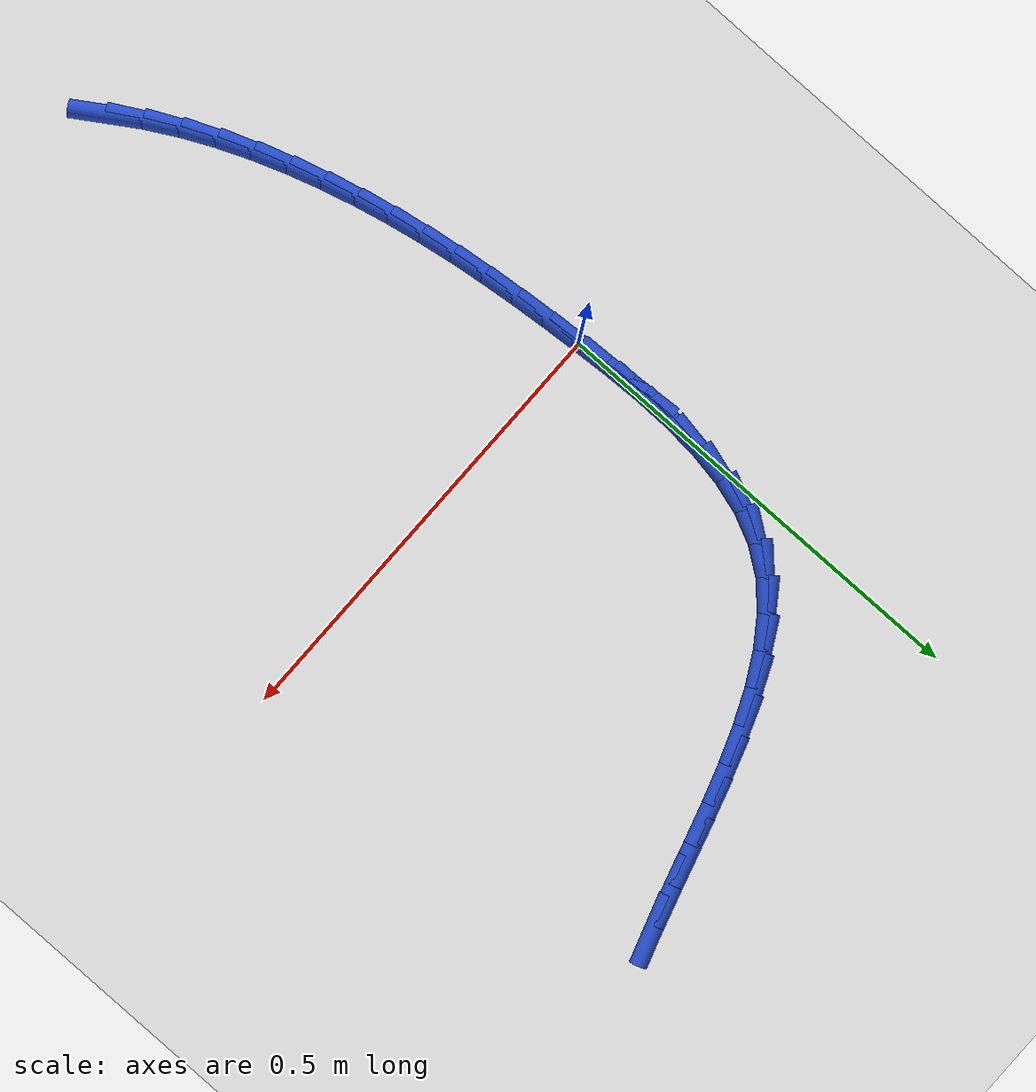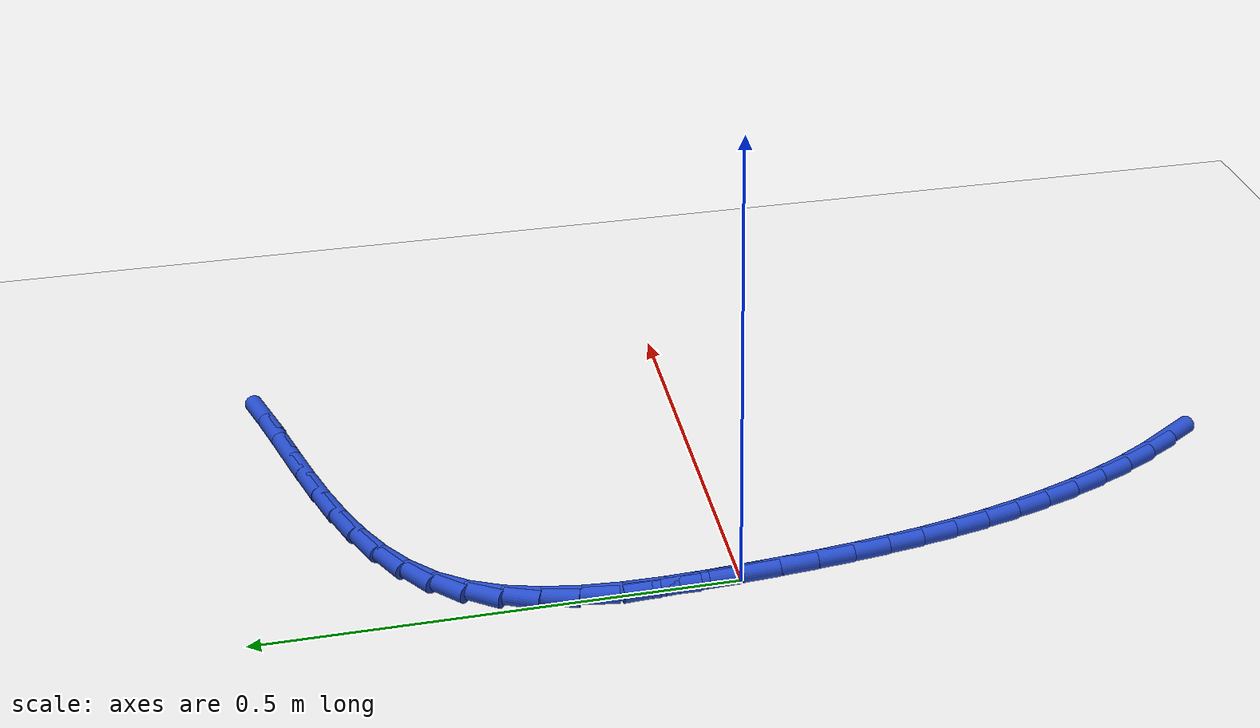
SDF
<sdf version="1.6">
 <world name="default">
  <model name="ground_plane">
   <static>1</static>
   <link name="link">
    <collision name="collision">
     <geometry><plane><normal>0 0 1</normal><size>100 100</size></plane></geometry>
     <surface><friction><ode><mu>100</mu><mu2>50</mu2></ode></friction></surface>
    </collision>
    <visual name="visual">
     <cast_shadows>0</cast_shadows>
     <geometry><plane><normal>0 0 1</normal><size>100 100</size></plane></geometry>
     <material>
      <script><uri>file://media/materials/scripts/gazebo.material</uri><name>Gazebo/WhiteGlow</name></script>
     </material>
    </visual>
   </link>
  </model>
  <model name="line">
   <link name="link_0">
    <pose>-2.0383000842727483e-17 -1.1102230246251565e-16 0.01 0 1.57 -1.508984199646049</pose>
    <collision name="collision">
     <geometry><cylinder><radius>0.01</radius><length>0.08</length></cylinder></geometry>
    </collision>
    <visual name="visual">
     <material>
      <script><name>Gazebo/Blue</name><uri>file://media/materials/scripts/gazebo.material</uri></script>
     </material>
     <geometry><cylinder><radius>0.01</radius><length>0.08</length></cylinder></geometry>
    </visual>
   </link>
   <link name="link_1">
    <pose>-0.0025937557235531923 0.041908467589019074 0.01 0 1.57 -1.5369183679164307</pose>
    <collision name="collision">
     <geometry><cylinder><radius>0.01</radius><length>0.08</length></cylinder></geometry>
    </collision>
    <visual name="visual">
     <material>
      <script><name>Gazebo/Blue</name><uri>file://media/materials/scripts/gazebo.material</uri></script>
     </material>
     <geometry><cylinder><radius>0.01</radius><length>0.08</length></cylinder></geometry>
    </visual>
   </link>
   <link name="link_2">
    <pose>-0.004026922768987371 0.0841961012385936 0.01 0 1.57 1.5589588671000538</pose>
    <collision name="collision">
     <geometry><cylinder><radius>0.01</radius><length>0.08</length></cylinder></geometry>
    </collision>
    <visual name="visual">
     <material>
      <script><name>Gazebo/Blue</name><uri>file://media/materials/scripts/gazebo.material</uri></script>
     </material>
     <geometry><cylinder><radius>0.01</radius><length>0.08</length></cylinder></geometry>
    </visual>
   </link>
   <link name="link_3">
    <pose>-0.0035299012083987186 0.12618132087694997 0.01 0 1.57 1.4929850990292006</pose>
    <collision name="collision">
     <geometry><cylinder><radius>0.01</radius><length>0.08</length></cylinder></geometry>
    </collision>
    <visual name="visual">
     <material>
      <script><name>Gazebo/Blue</name><uri>file://media/materials/scripts/gazebo.material</uri></script>
     </material>
     <geometry><cylinder><radius>0.01</radius><length>0.08</length></cylinder></geometry>
    </visual>
   </link>
   <link name="link_4">
    <pose>-0.00033309111388339814 0.16718254643231467 0.01 0 1.57 1.4029216809968357</pose>
    <collision name="collision">
     <geometry><cylinder><radius>0.01</radius><length>0.08</length></cylinder></geometry>
    </collision>
    <visual name="visual">
     <material>
      <script><name>Gazebo/Blue</name><uri>file://media/materials/scripts/gazebo.material</uri></script>
     </material>
     <geometry><cylinder><radius>0.01</radius><length>0.08</length></cylinder></geometry>
    </visual>
   </link>
   <link name="link_5">
    <pose>0.00633310744246242 0.2065181978329144 0.01 0 1.57 1.2840926498506111</pose>
    <collision name="collision">
     <geometry><cylinder><radius>0.01</radius><length>0.08</length></cylinder></geometry>
    </collision>
    <visual name="visual">
     <material>
      <script><name>Gazebo/Blue</name><uri>file://media/materials/scripts/gazebo.material</uri></script>
     </material>
     <geometry><cylinder><radius>0.01</radius><length>0.08</length></cylinder></geometry>
    </visual>
   </link>
   <link name="link_6">
    <pose>0.01723829438854259 0.2435066950069756 0.01 0 1.57 1.1325771899493786</pose>
    <collision name="collision">
     <geometry><cylinder><radius>0.01</radius><length>0.08</length></cylinder></geometry>
    </collision>
    <visual name="visual">
     <material>
      <script><name>Gazebo/Blue</name><uri>file://media/materials/scripts/gazebo.material</uri></script>
     </material>
     <geometry><cylinder><radius>0.01</radius><length>0.08</length></cylinder></geometry>
    </visual>
   </link>
   <link name="link_7">
    <pose>0.03315206965226094 0.2774664578827249 0.01 0 1.57 0.9494726755291081</pose>
    <collision name="collision">
     <geometry><cylinder><radius>0.01</radius><length>0.08</length></cylinder></geometry>
    </collision>
    <visual name="visual">
     <material>
      <script><name>Gazebo/Blue</name><uri>file://media/materials/scripts/gazebo.material</uri></script>
     </material>
     <geometry><cylinder><radius>0.01</radius><length>0.08</length></cylinder></geometry>
    </visual>
   </link>
   <link name="link_8">
    <pose>0.05482023807800502 0.30773310252756725 0.01 0 1.57 0.7664684722568968</pose>
    <collision name="collision">
     <geometry><cylinder><radius>0.01</radius><length>0.08</length></cylinder></geometry>
    </collision>
    <visual name="visual">
     <material>
      <script><name>Gazebo/Blue</name><uri>file://media/materials/scripts/gazebo.material</uri></script>
     </material>
     <geometry><cylinder><radius>0.01</radius><length>0.08</length></cylinder></geometry>
    </visual>
   </link>
   <link name="link_9">
    <pose>0.08226925402855513 0.33416210244044053 0.01 0 1.57 0.6179066574830141</pose>
    <collision name="collision">
     <geometry><cylinder><radius>0.01</radius><length>0.08</length></cylinder></geometry>
    </collision>
    <visual name="visual">
     <material>
      <script><name>Gazebo/Blue</name><uri>file://media/materials/scripts/gazebo.material</uri></script>
     </material>
     <geometry><cylinder><radius>0.01</radius><length>0.08</length></cylinder></geometry>
    </visual>
   </link>
   <link name="link_10">
    <pose>0.11469524535313261 0.35720898828255493 0.01 0 1.57 0.5038825935117731</pose>
    <collision name="collision">
     <geometry><cylinder><radius>0.01</radius><length>0.08</length></cylinder></geometry>
    </collision>
    <visual name="visual">
     <material>
      <script><name>Gazebo/Blue</name><uri>file://media/materials/scripts/gazebo.material</uri></script>
     </material>
     <geometry><cylinder><radius>0.01</radius><length>0.08</length></cylinder></geometry>
    </visual>
   </link>
   <link name="link_11">
    <pose>0.15124820629704872 0.3773626303700579 0.01 0 1.57 0.4192109456956508</pose>
    <collision name="collision">
     <geometry><cylinder><radius>0.01</radius><length>0.08</length></cylinder></geometry>
    </collision>
    <visual name="visual">
     <material>
      <script><name>Gazebo/Blue</name><uri>file://media/materials/scripts/gazebo.material</uri></script>
     </material>
     <geometry><cylinder><radius>0.01</radius><length>0.08</length></cylinder></geometry>
    </visual>
   </link>
   <link name="link_12">
    <pose>0.19107813110561453 0.3951118990190969 0.01 0 1.57 0.3585099443431421</pose>
    <collision name="collision">
     <geometry><cylinder><radius>0.01</radius><length>0.08</length></cylinder></geometry>
    </collision>
    <visual name="visual">
     <material>
      <script><name>Gazebo/Blue</name><uri>file://media/materials/scripts/gazebo.material</uri></script>
     </material>
     <geometry><cylinder><radius>0.01</radius><length>0.08</length></cylinder></geometry>
    </visual>
   </link>
   <link name="link_13">
    <pose>0.23333501402414158 0.41094566454581993 0.01 0 1.57 0.3175531777257455</pose>
    <collision name="collision">
     <geometry><cylinder><radius>0.01</radius><length>0.08</length></cylinder></geometry>
    </collision>
    <visual name="visual">
     <material>
      <script><name>Gazebo/Blue</name><uri>file://media/materials/scripts/gazebo.material</uri></script>
     </material>
     <geometry><cylinder><radius>0.01</radius><length>0.08</length></cylinder></geometry>
    </visual>
   </link>
   <link name="link_14">
    <pose>0.277168849297941 0.42535279726637454 0.01 0 1.57 0.29353770409655716</pose>
    <collision name="collision">
     <geometry><cylinder><radius>0.01</radius><length>0.08</length></cylinder></geometry>
    </collision>
    <visual name="visual">
     <material>
      <script><name>Gazebo/Blue</name><uri>file://media/materials/scripts/gazebo.material</uri></script>
     </material>
     <geometry><cylinder><radius>0.01</radius><length>0.08</length></cylinder></geometry>
    </visual>
   </link>
   <link name="link_15">
    <pose>0.32172963117232395 0.43882216749690806 0.01 0 1.57 0.2850271375050466</pose>
    <collision name="collision">
     <geometry><cylinder><radius>0.01</radius><length>0.08</length></cylinder></geometry>
    </collision>
    <visual name="visual">
     <material>
      <script><name>Gazebo/Blue</name><uri>file://media/materials/scripts/gazebo.material</uri></script>
     </material>
     <geometry><cylinder><radius>0.01</radius><length>0.08</length></cylinder></geometry>
    </visual>
   </link>
   <link name="link_16">
    <pose>0.36616735389260185 0.45184264555356823 0.01 0 1.57 0.29190123542418794</pose>
    <collision name="collision">
     <geometry><cylinder><radius>0.01</radius><length>0.08</length></cylinder></geometry>
    </collision>
    <visual name="visual">
     <material>
      <script><name>Gazebo/Blue</name><uri>file://media/materials/scripts/gazebo.material</uri></script>
     </material>
     <geometry><cylinder><radius>0.01</radius><length>0.08</length></cylinder></geometry>
    </visual>
   </link>
   <link name="link_17">
    <pose>0.4096320117040857 0.46490310175250293 0.01 0 1.57 0.3154431690553602</pose>
    <collision name="collision">
     <geometry><cylinder><radius>0.01</radius><length>0.08</length></cylinder></geometry>
    </collision>
    <visual name="visual">
     <material>
      <script><name>Gazebo/Blue</name><uri>file://media/materials/scripts/gazebo.material</uri></script>
     </material>
     <geometry><cylinder><radius>0.01</radius><length>0.08</length></cylinder></geometry>
    </visual>
   </link>
   <link name="link_196">
    <pose>0.1476421398126952 -0.528757730304666 0.01 0 1.57 -1.0013062249874536</pose>
    <collision name="collision">
     <geometry><cylinder><radius>0.01</radius><length>0.08</length></cylinder></geometry>
    </collision>
    <visual name="visual">
     <material>
      <script><name>Gazebo/Blue</name><uri>file://media/materials/scripts/gazebo.material</uri></script>
     </material>
     <geometry><cylinder><radius>0.01</radius><length>0.08</length></cylinder></geometry>
    </visual>
   </link>
   <link name="link_197">
    <pose>0.1263808769100458 -0.4955499477586473 0.01 0 1.57 -1.0669664042197935</pose>
    <collision name="collision">
     <geometry><cylinder><radius>0.01</radius><length>0.08</length></cylinder></geometry>
    </collision>
    <visual name="visual">
     <material>
      <script><name>Gazebo/Blue</name><uri>file://media/materials/scripts/gazebo.material</uri></script>
     </material>
     <geometry><cylinder><radius>0.01</radius><length>0.08</length></cylinder></geometry>
    </visual>
   </link>
   <link name="link_198">
    <pose>0.10717980445678008 -0.46072033794037787 0.01 0 1.57 -1.1257409985814015</pose>
    <collision name="collision">
     <geometry><cylinder><radius>0.01</radius><length>0.08</length></cylinder></geometry>
    </collision>
    <visual name="visual">
     <material>
      <script><name>Gazebo/Blue</name><uri>file://media/materials/scripts/gazebo.material</uri></script>
     </material>
     <geometry><cylinder><radius>0.01</radius><length>0.08</length></cylinder></geometry>
    </visual>
   </link>
   <link name="link_199">
    <pose>0.08994911823874799 -0.4245951154681997 0.01 0 1.57 -1.1784422330695605</pose>
    <collision name="collision">
     <geometry><cylinder><radius>0.01</radius><length>0.08</length></cylinder></geometry>
    </collision>
    <visual name="visual">
     <material>
      <script><name>Gazebo/Blue</name><uri>file://media/materials/scripts/gazebo.material</uri></script>
     </material>
     <geometry><cylinder><radius>0.01</radius><length>0.08</length></cylinder></geometry>
    </visual>
   </link>
   <link name="link_200">
    <pose>0.07459901404179944 -0.38750049496045497 0.01 0 1.57 -1.225857441116675</pose>
    <collision name="collision">
     <geometry><cylinder><radius>0.01</radius><length>0.08</length></cylinder></geometry>
    </collision>
    <visual name="visual">
     <material>
      <script><name>Gazebo/Blue</name><uri>file://media/materials/scripts/gazebo.material</uri></script>
     </material>
     <geometry><cylinder><radius>0.01</radius><length>0.08</length></cylinder></geometry>
    </visual>
   </link>
   <link name="link_201">
    <pose>0.06103968765178441 -0.34976269103548546 0.01 0 1.57 -1.2687199656257557</pose>
    <collision name="collision">
     <geometry><cylinder><radius>0.01</radius><length>0.08</length></cylinder></geometry>
    </collision>
    <visual name="visual">
     <material>
      <script><name>Gazebo/Blue</name><uri>file://media/materials/scripts/gazebo.material</uri></script>
     </material>
     <geometry><cylinder><radius>0.01</radius><length>0.08</length></cylinder></geometry>
    </visual>
   </link>
   <link name="link_202">
    <pose>0.049181334854552596 -0.3117079183116325 0.01 0 1.57 -1.3077449183342065</pose>
    <collision name="collision">
     <geometry><cylinder><radius>0.01</radius><length>0.08</length></cylinder></geometry>
    </collision>
    <visual name="visual">
     <material>
      <script><name>Gazebo/Blue</name><uri>file://media/materials/scripts/gazebo.material</uri></script>
     </material>
     <geometry><cylinder><radius>0.01</radius><length>0.08</length></cylinder></geometry>
    </visual>
   </link>
   <link name="link_203">
    <pose>0.03893225969676055 -0.273648517780249 0.01 0 1.57 -1.3440976621035465</pose>
    <collision name="collision">
     <geometry><cylinder><radius>0.01</radius><length>0.08</length></cylinder></geometry>
    </collision>
    <visual name="visual">
     <material>
      <script><name>Gazebo/Blue</name><uri>file://media/materials/scripts/gazebo.material</uri></script>
     </material>
     <geometry><cylinder><radius>0.01</radius><length>0.08</length></cylinder></geometry>
    </visual>
   </link>
   <link name="link_204">
    <pose>0.0301667181326474 -0.2356471287108742 0.01 0 1.57 -1.378002630979477</pose>
    <collision name="collision">
     <geometry><cylinder><radius>0.01</radius><length>0.08</length></cylinder></geometry>
    </collision>
    <visual name="visual">
     <material>
      <script><name>Gazebo/Blue</name><uri>file://media/materials/scripts/gazebo.material</uri></script>
     </material>
     <geometry><cylinder><radius>0.01</radius><length>0.08</length></cylinder></geometry>
    </visual>
   </link>
   <link name="link_205">
    <pose>0.022729468670233795 -0.1975500621564858 0.01 0 1.57 -1.4088734595850083</pose>
    <collision name="collision">
     <geometry><cylinder><radius>0.01</radius><length>0.08</length></cylinder></geometry>
    </collision>
    <visual name="visual">
     <material>
      <script><name>Gazebo/Blue</name><uri>file://media/materials/scripts/gazebo.material</uri></script>
     </material>
     <geometry><cylinder><radius>0.01</radius><length>0.08</length></cylinder></geometry>
    </visual>
   </link>
   <link name="link_206">
    <pose>0.01646429408427234 -0.15919647334253115 0.01 0 1.57 -1.436221630158707</pose>
    <collision name="collision">
     <geometry><cylinder><radius>0.01</radius><length>0.08</length></cylinder></geometry>
    </collision>
    <visual name="visual">
     <material>
      <script><name>Gazebo/Blue</name><uri>file://media/materials/scripts/gazebo.material</uri></script>
     </material>
     <geometry><cylinder><radius>0.01</radius><length>0.08</length></cylinder></geometry>
    </visual>
   </link>
   <link name="link_207">
    <pose>0.011214977149515628 -0.12042551749445778 0.01 0 1.57 -1.4596986405284398</pose>
    <collision name="collision">
     <geometry><cylinder><radius>0.01</radius><length>0.08</length></cylinder></geometry>
    </collision>
    <visual name="visual">
     <material>
      <script><name>Gazebo/Blue</name><uri>file://media/materials/scripts/gazebo.material</uri></script>
     </material>
     <geometry><cylinder><radius>0.01</radius><length>0.08</length></cylinder></geometry>
    </visual>
   </link>
   <link name="link_208">
    <pose>0.0068253006407162625 -0.08107634983771317 0.01 0 1.57 -1.4791006698336737</pose>
    <collision name="collision">
     <geometry><cylinder><radius>0.01</radius><length>0.08</length></cylinder></geometry>
    </collision>
    <visual name="visual">
     <material>
      <script><name>Gazebo/Blue</name><uri>file://media/materials/scripts/gazebo.material</uri></script>
     </material>
     <geometry><cylinder><radius>0.01</radius><length>0.08</length></cylinder></geometry>
    </visual>
   </link>
   <link name="link_209">
    <pose>0.0031390473326267745 -0.04098812559774391 0.01 0 1.57 -1.4943612180367682</pose>
    <collision name="collision">
     <geometry><cylinder><radius>0.01</radius><length>0.08</length></cylinder></geometry>
    </collision>
    <visual name="visual">
     <material>
      <script><name>Gazebo/Blue</name><uri>file://media/materials/scripts/gazebo.material</uri></script>
     </material>
     <geometry><cylinder><radius>0.01</radius><length>0.08</length></cylinder></geometry>
    </visual>
   </link>
   <link name="link_210">
    <pose>-5.204170427930421e-18 -2.5673907444456745e-16 0.01 0 1.57 -1.5055352146063272</pose>
    <collision name="collision">
     <geometry><cylinder><radius>0.01</radius><length>0.08</length></cylinder></geometry>
    </collision>
    <visual name="visual">
     <material>
      <script><name>Gazebo/Blue</name><uri>file://media/materials/scripts/gazebo.material</uri></script>
     </material>
     <geometry><cylinder><radius>0.01</radius><length>0.08</length></cylinder></geometry>
    </visual>
   </link>
   <link name="link_211">
    <pose>-0.0027480585824117094 0.04204887173007309 0.01 0 1.57 -1.5127783097066876</pose>
    <collision name="collision">
     <geometry><cylinder><radius>0.01</radius><length>0.08</length></cylinder></geometry>
    </collision>
    <visual name="visual">
     <material>
      <script><name>Gazebo/Blue</name><uri>file://media/materials/scripts/gazebo.material</uri></script>
     </material>
     <geometry><cylinder><radius>0.01</radius><length>0.08</length></cylinder></geometry>
    </visual>
   </link>
   <link name="link_212">
    <pose>-0.0052613456398557705 0.08531933436702979 0.01 0 1.57 -1.5092078059109322</pose>
    <collision name="collision">
     <geometry><cylinder><radius>0.01</radius><length>0.08</length></cylinder></geometry>
    </collision>
    <visual name="visual">
     <material>
      <script><name>Gazebo/Blue</name><uri>file://media/materials/scripts/gazebo.material</uri></script>
     </material>
     <geometry><cylinder><radius>0.01</radius><length>0.08</length></cylinder></geometry>
    </visual>
   </link>
  </model>
 </world>
</sdf>
